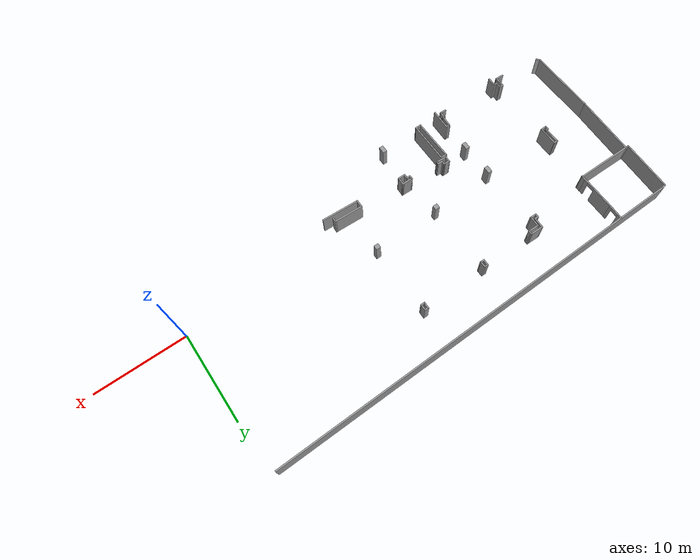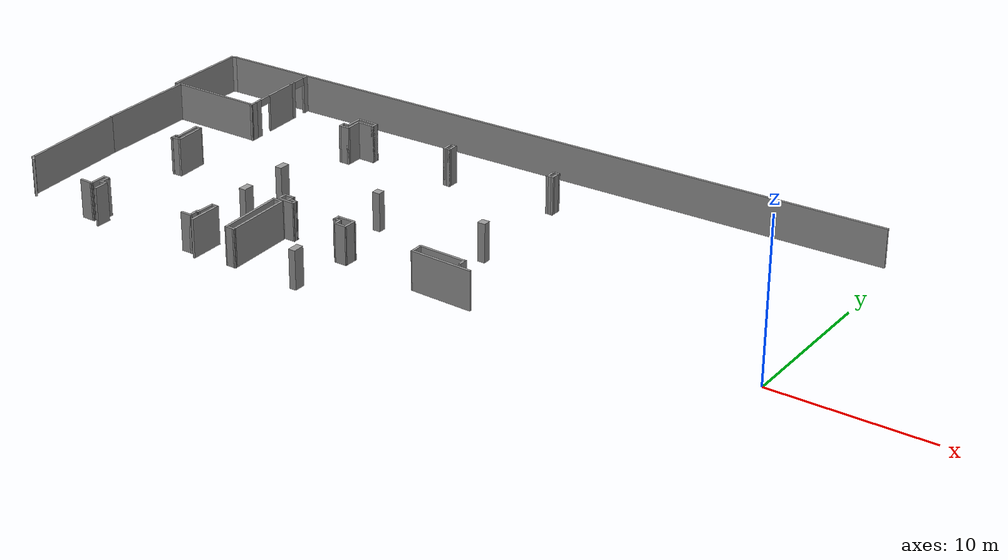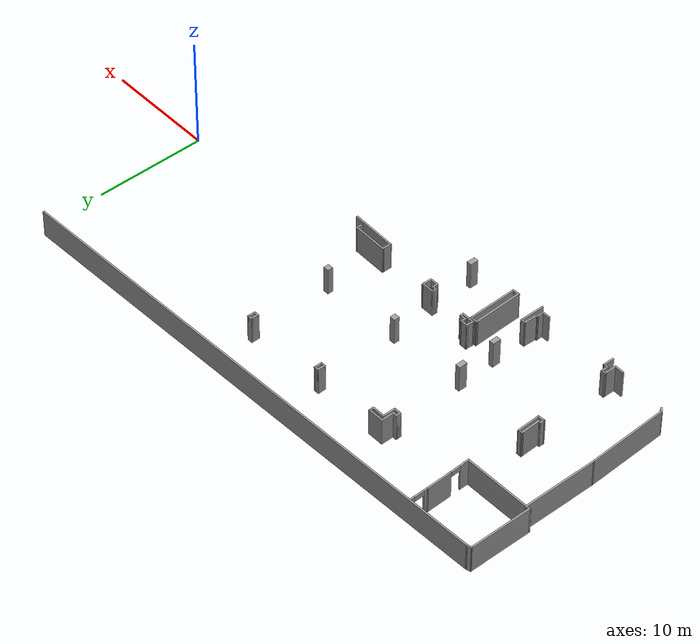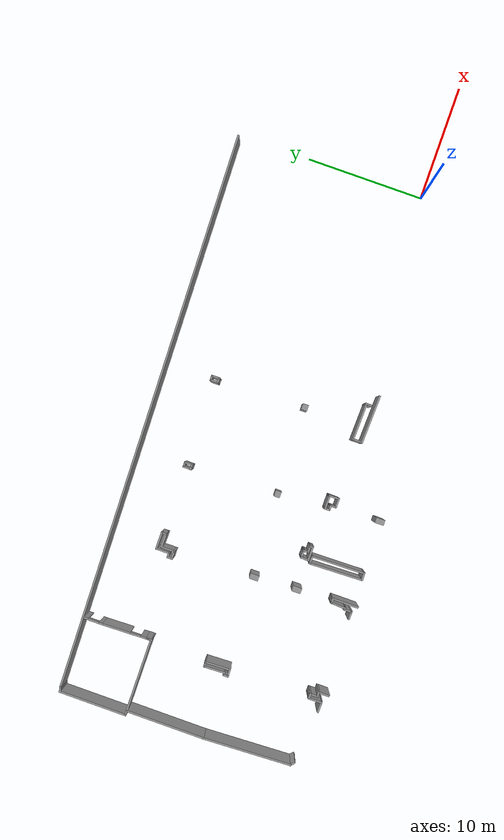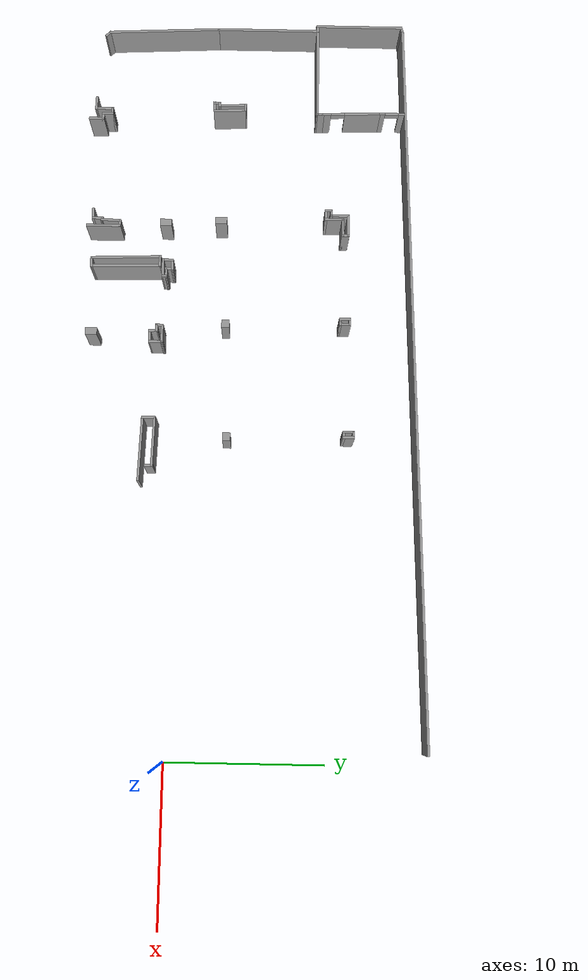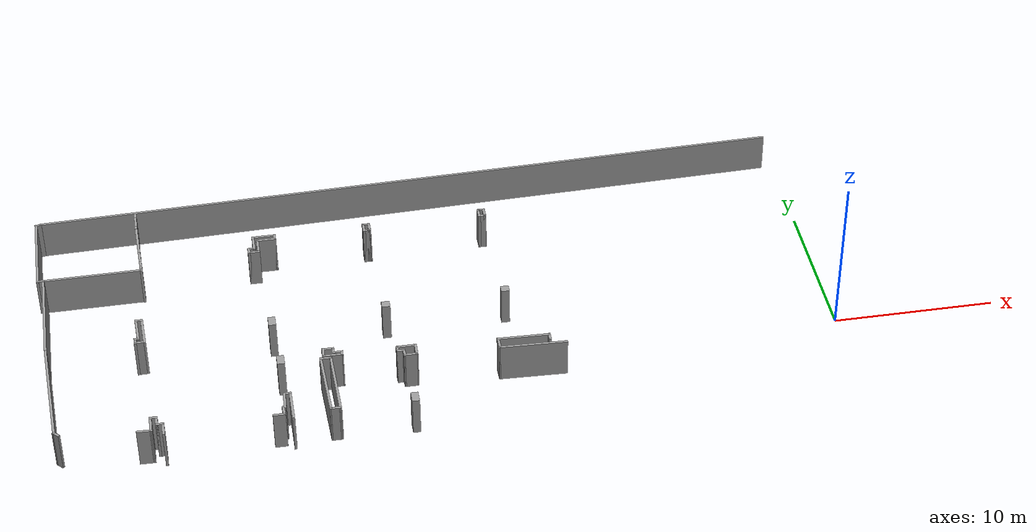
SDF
<sdf version="1.6">
 <model name="car_parking_underground_big_1">
  <pose>-9.36123 -7.37411 0 0 -0 0</pose>
  <link name="Wall_109">
   <collision name="Wall_109_Collision">
    <geometry><box><size>5.75 0.15 2.5</size></box></geometry>
    <pose>0 0 1.25 0 -0 0</pose>
   </collision>
   <visual name="Wall_109_Visual">
    <pose>0 0 1.25 0 -0 0</pose>
    <geometry><box><size>5.75 0.15 2.5</size></box></geometry>
    <material>
     <script><uri>file://media/materials/scripts/gazebo.material</uri><name>Gazebo/Grey</name></script>
     <ambient>1 1 1 1</ambient>
    </material>
    <meta><layer>0</layer></meta>
   </visual>
   <pose>-38.933 19.091 0 0 -0 -1.5708</pose>
  </link>
  <link name="Wall_110">
   <collision name="Wall_110_Collision">
    <geometry><box><size>0.491037 0.15 2.5</size></box></geometry>
    <pose>0 0 1.25 0 -0 0</pose>
   </collision>
   <visual name="Wall_110_Visual">
    <pose>0 0 1.25 0 -0 0</pose>
    <geometry><box><size>0.491037 0.15 2.5</size></box></geometry>
    <material>
     <script><uri>file://media/materials/scripts/gazebo.material</uri><name>Gazebo/Grey</name></script>
     <ambient>1 1 1 1</ambient>
    </material>
    <meta><layer>0</layer></meta>
   </visual>
   <pose>-38.7625 16.311 0 0 -0 1.1e-05</pose>
  </link>
  <link name="Wall_111">
   <collision name="Wall_111_Collision">
    <geometry><box><size>6.75 0.15 2.5</size></box></geometry>
    <pose>0 0 1.25 0 -0 0</pose>
   </collision>
   <visual name="Wall_111_Visual">
    <pose>0 0 1.25 0 -0 0</pose>
    <geometry><box><size>6.75 0.15 2.5</size></box></geometry>
    <material>
     <script><uri>file://media/materials/scripts/gazebo.material</uri><name>Gazebo/Grey</name></script>
     <ambient>1 1 1 1</ambient>
    </material>
    <meta><layer>0</layer></meta>
   </visual>
   <pose>-38.592 13.011 0 0 -0 -1.5708</pose>
  </link>
  <link name="Wall_112">
   <collision name="Wall_112_Collision">
    <geometry><box><size>7.4154 0.15 2.5</size></box></geometry>
    <pose>0 0 1.25 0 -0 0</pose>
   </collision>
   <visual name="Wall_112_Visual">
    <pose>0 0 1.25 0 -0 0</pose>
    <geometry><box><size>7.4154 0.15 2.5</size></box></geometry>
    <material>
     <script><uri>file://media/materials/scripts/gazebo.material</uri><name>Gazebo/Grey</name></script>
     <ambient>1 1 1 1</ambient>
    </material>
    <meta><layer>0</layer></meta>
   </visual>
   <pose>-38.4259 6.08207 0 0 -0 -1.52507</pose>
  </link>
  <link name="Wall_113">
   <collision name="Wall_113_Collision">
    <geometry><box><size>0.5 0.15 2.5</size></box></geometry>
    <pose>0 0 1.25 0 -0 0</pose>
   </collision>
   <visual name="Wall_113_Visual">
    <pose>0 0 1.25 0 -0 0</pose>
    <geometry><box><size>0.5 0.15 2.5</size></box></geometry>
    <material>
     <script><uri>file://media/materials/scripts/gazebo.material</uri><name>Gazebo/Grey</name></script>
     <ambient>1 1 1 1</ambient>
    </material>
    <meta><layer>0</layer></meta>
   </visual>
   <pose>-38.1362 2.32942 0 0 -0 -0.785398</pose>
  </link>
  <link name="Wall_425">
   <collision name="Wall_425_Collision">
    <geometry><box><size>0.5 0.15 2.5</size></box></geometry>
    <pose>0 0 1.25 0 -0 0</pose>
   </collision>
   <visual name="Wall_425_Visual">
    <pose>0 0 1.25 0 -0 0</pose>
    <geometry><box><size>0.5 0.15 2.5</size></box></geometry>
    <material>
     <script><uri>file://media/materials/scripts/gazebo.material</uri><name>Gazebo/Grey</name></script>
     <ambient>1 1 1 1</ambient>
    </material>
    <meta><layer>0</layer></meta>
   </visual>
   <pose>-11.0032 18.8573 0 0 -0 0</pose>
  </link>
  <link name="Wall_426">
   <collision name="Wall_426_Collision">
    <geometry><box><size>0.75 0.15 2.5</size></box></geometry>
    <pose>0 0 1.25 0 -0 0</pose>
   </collision>
   <visual name="Wall_426_Visual">
    <pose>0 0 1.25 0 -0 0</pose>
    <geometry><box><size>0.75 0.15 2.5</size></box></geometry>
    <material>
     <script><uri>file://media/materials/scripts/gazebo.material</uri><name>Gazebo/Grey</name></script>
     <ambient>1 1 1 1</ambient>
    </material>
    <meta><layer>0</layer></meta>
   </visual>
   <pose>-10.8282 18.5573 0 0 -0 -1.5708</pose>
  </link>
  <link name="Wall_427">
   <collision name="Wall_427_Collision">
    <geometry><box><size>0.5 0.15 2.5</size></box></geometry>
    <pose>0 0 1.25 0 -0 0</pose>
   </collision>
   <visual name="Wall_427_Visual">
    <pose>0 0 1.25 0 -0 0</pose>
    <geometry><box><size>0.5 0.15 2.5</size></box></geometry>
    <material>
     <script><uri>file://media/materials/scripts/gazebo.material</uri><name>Gazebo/Grey</name></script>
     <ambient>1 1 1 1</ambient>
    </material>
    <meta><layer>0</layer></meta>
   </visual>
   <pose>-11.0032 18.2573 0 0 -0 3.14159</pose>
  </link>
  <link name="Wall_428">
   <collision name="Wall_428_Collision">
    <geometry><box><size>0.75 0.15 2.5</size></box></geometry>
    <pose>0 0 1.25 0 -0 0</pose>
   </collision>
   <visual name="Wall_428_Visual">
    <pose>0 0 1.25 0 -0 0</pose>
    <geometry><box><size>0.75 0.15 2.5</size></box></geometry>
    <material>
     <script><uri>file://media/materials/scripts/gazebo.material</uri><name>Gazebo/Grey</name></script>
     <ambient>1 1 1 1</ambient>
    </material>
    <meta><layer>0</layer></meta>
   </visual>
   <pose>-11.1782 18.5573 0 0 -0 1.5708</pose>
  </link>
  <link name="Wall_430">
   <collision name="Wall_430_Collision">
    <geometry><box><size>0.5 0.15 2.5</size></box></geometry>
    <pose>0 0 1.25 0 -0 0</pose>
   </collision>
   <visual name="Wall_430_Visual">
    <pose>0 0 1.25 0 -0 0</pose>
    <geometry><box><size>0.5 0.15 2.5</size></box></geometry>
    <material>
     <script><uri>file://media/materials/scripts/gazebo.material</uri><name>Gazebo/Grey</name></script>
     <ambient>1 1 1 1</ambient>
    </material>
    <meta><layer>0</layer></meta>
   </visual>
   <pose>-18.3832 18.5773 0 0 -0 0</pose>
  </link>
  <link name="Wall_431">
   <collision name="Wall_431_Collision">
    <geometry><box><size>0.75 0.15 2.5</size></box></geometry>
    <pose>0 0 1.25 0 -0 0</pose>
   </collision>
   <visual name="Wall_431_Visual">
    <pose>0 0 1.25 0 -0 0</pose>
    <geometry><box><size>0.75 0.15 2.5</size></box></geometry>
    <material>
     <script><uri>file://media/materials/scripts/gazebo.material</uri><name>Gazebo/Grey</name></script>
     <ambient>1 1 1 1</ambient>
    </material>
    <meta><layer>0</layer></meta>
   </visual>
   <pose>-18.2082 18.2773 0 0 -0 -1.5708</pose>
  </link>
  <link name="Wall_432">
   <collision name="Wall_432_Collision">
    <geometry><box><size>0.25 0.15 2.5</size></box></geometry>
    <pose>0 0 1.25 0 -0 0</pose>
   </collision>
   <visual name="Wall_432_Visual">
    <pose>0 0 1.25 0 -0 0</pose>
    <geometry><box><size>0.25 0.15 2.5</size></box></geometry>
    <material>
     <script><uri>file://media/materials/scripts/gazebo.material</uri><name>Gazebo/Grey</name></script>
     <ambient>1 1 1 1</ambient>
    </material>
    <meta><layer>0</layer></meta>
   </visual>
   <pose>-18.2582 17.9773 0 0 -0 3.14159</pose>
  </link>
  <link name="Wall_433">
   <collision name="Wall_433_Collision">
    <geometry><box><size>0.4 0.15 2.5</size></box></geometry>
    <pose>0 0 1.25 0 -0 0</pose>
   </collision>
   <visual name="Wall_433_Visual">
    <pose>0 0 1.25 0 -0 0</pose>
    <geometry><box><size>0.4 0.15 2.5</size></box></geometry>
    <material>
     <script><uri>file://media/materials/scripts/gazebo.material</uri><name>Gazebo/Grey</name></script>
     <ambient>1 1 1 1</ambient>
    </material>
    <meta><layer>0</layer></meta>
   </visual>
   <pose>-18.4332 17.9773 0 0 -0 3.14159</pose>
  </link>
  <link name="Wall_434">
   <collision name="Wall_434_Collision">
    <geometry><box><size>0.75 0.15 2.5</size></box></geometry>
    <pose>0 0 1.25 0 -0 0</pose>
   </collision>
   <visual name="Wall_434_Visual">
    <pose>0 0 1.25 0 -0 0</pose>
    <geometry><box><size>0.75 0.15 2.5</size></box></geometry>
    <material>
     <script><uri>file://media/materials/scripts/gazebo.material</uri><name>Gazebo/Grey</name></script>
     <ambient>1 1 1 1</ambient>
    </material>
    <meta><layer>0</layer></meta>
   </visual>
   <pose>-18.5582 18.2773 0 0 -0 1.5708</pose>
  </link>
  <link name="Wall_436">
   <collision name="Wall_436_Collision">
    <geometry><box><size>1.5 0.15 2.5</size></box></geometry>
    <pose>0 0 1.25 0 -0 0</pose>
   </collision>
   <visual name="Wall_436_Visual">
    <pose>0 0 1.25 0 -0 0</pose>
    <geometry><box><size>1.5 0.15 2.5</size></box></geometry>
    <material>
     <script><uri>file://media/materials/scripts/gazebo.material</uri><name>Gazebo/Grey</name></script>
     <ambient>1 1 1 1</ambient>
    </material>
    <meta><layer>0</layer></meta>
   </visual>
   <pose>-24.8632 18.4373 0 0 -0 0</pose>
  </link>
  <link name="Wall_437">
   <collision name="Wall_437_Collision">
    <geometry><box><size>0.5 0.15 2.5</size></box></geometry>
    <pose>0 0 1.25 0 -0 0</pose>
   </collision>
   <visual name="Wall_437_Visual">
    <pose>0 0 1.25 0 -0 0</pose>
    <geometry><box><size>0.5 0.15 2.5</size></box></geometry>
    <material>
     <script><uri>file://media/materials/scripts/gazebo.material</uri><name>Gazebo/Grey</name></script>
     <ambient>1 1 1 1</ambient>
    </material>
    <meta><layer>0</layer></meta>
   </visual>
   <pose>-24.1882 18.2623 0 0 -0 -1.5708</pose>
  </link>
  <link name="Wall_438">
   <collision name="Wall_438_Collision">
    <geometry><box><size>1.25 0.15 2.5</size></box></geometry>
    <pose>0 0 1.25 0 -0 0</pose>
   </collision>
   <visual name="Wall_438_Visual">
    <pose>0 0 1.25 0 -0 0</pose>
    <geometry><box><size>1.25 0.15 2.5</size></box></geometry>
    <material>
     <script><uri>file://media/materials/scripts/gazebo.material</uri><name>Gazebo/Grey</name></script>
     <ambient>1 1 1 1</ambient>
    </material>
    <meta><layer>0</layer></meta>
   </visual>
   <pose>-24.7382 18.0873 0 0 -0 3.14159</pose>
  </link>
  <link name="Wall_439">
   <collision name="Wall_439_Collision">
    <geometry><box><size>1.25 0.15 2.5</size></box></geometry>
    <pose>0 0 1.25 0 -0 0</pose>
   </collision>
   <visual name="Wall_439_Visual">
    <pose>0 0 1.25 0 -0 0</pose>
    <geometry><box><size>1.25 0.15 2.5</size></box></geometry>
    <material>
     <script><uri>file://media/materials/scripts/gazebo.material</uri><name>Gazebo/Grey</name></script>
     <ambient>1 1 1 1</ambient>
    </material>
    <meta><layer>0</layer></meta>
   </visual>
   <pose>-25.2882 17.5373 0 0 -0 -1.5708</pose>
  </link>
  <link name="Wall_440">
   <collision name="Wall_440_Collision">
    <geometry><box><size>0.75 0.15 2.5</size></box></geometry>
    <pose>0 0 1.25 0 -0 0</pose>
   </collision>
   <visual name="Wall_440_Visual">
    <pose>0 0 1.25 0 -0 0</pose>
    <geometry><box><size>0.75 0.15 2.5</size></box></geometry>
    <material>
     <script><uri>file://media/materials/scripts/gazebo.material</uri><name>Gazebo/Grey</name></script>
     <ambient>1 1 1 1</ambient>
    </material>
    <meta><layer>0</layer></meta>
   </visual>
   <pose>-25.5882 16.9873 0 0 -0 3.14159</pose>
  </link>
  <link name="Wall_441">
   <collision name="Wall_441_Collision">
    <geometry><box><size>0.5 0.15 2.5</size></box></geometry>
    <pose>0 0 1.25 0 -0 0</pose>
   </collision>
   <visual name="Wall_441_Visual">
    <pose>0 0 1.25 0 -0 0</pose>
    <geometry><box><size>0.5 0.15 2.5</size></box></geometry>
    <material>
     <script><uri>file://media/materials/scripts/gazebo.material</uri><name>Gazebo/Grey</name></script>
     <ambient>1 1 1 1</ambient>
    </material>
    <meta><layer>0</layer></meta>
   </visual>
   <pose>-25.8882 17.1623 0 0 -0 1.5708</pose>
  </link>
  <link name="Wall_442">
   <collision name="Wall_442_Collision">
    <geometry><box><size>0.5 0.15 2.5</size></box></geometry>
    <pose>0 0 1.25 0 -0 0</pose>
   </collision>
   <visual name="Wall_442_Visual">
    <pose>0 0 1.25 0 -0 0</pose>
    <geometry><box><size>0.5 0.15 2.5</size></box></geometry>
    <material>
     <script><uri>file://media/materials/scripts/gazebo.material</uri><name>Gazebo/Grey</name></script>
     <ambient>1 1 1 1</ambient>
    </material>
    <meta><layer>0</layer></meta>
   </visual>
   <pose>-25.7132 17.3373 0 0 -0 0</pose>
  </link>
  <link name="Wall_443">
   <collision name="Wall_443_Collision">
    <geometry><box><size>1.25 0.15 2.5</size></box></geometry>
    <pose>0 0 1.25 0 -0 0</pose>
   </collision>
   <visual name="Wall_443_Visual">
    <pose>0 0 1.25 0 -0 0</pose>
    <geometry><box><size>1.25 0.15 2.5</size></box></geometry>
    <material>
     <script><uri>file://media/materials/scripts/gazebo.material</uri><name>Gazebo/Grey</name></script>
     <ambient>1 1 1 1</ambient>
    </material>
    <meta><layer>0</layer></meta>
   </visual>
   <pose>-25.5382 17.8873 0 0 -0 1.5708</pose>
  </link>
  <link name="Wall_445">
   <pose>-32.7182 21.2973 0 0 -0 -1.5708</pose>
   <visual name="Wall_445_Visual_0">
    <pose>-0.642378 0 1.25 0 -0 0</pose>
    <geometry><box><size>0.465243 0.15 2.5</size></box></geometry>
    <material>
     <script><uri>file://media/materials/scripts/gazebo.material</uri><name>Gazebo/Grey</name></script>
     <ambient>1 1 1 1</ambient>
    </material>
    <meta><layer>0</layer></meta>
   </visual>
   <collision name="Wall_445_Collision_0">
    <geometry><box><size>0.465243 0.15 2.5</size></box></geometry>
    <pose>-0.642378 0 1.25 0 -0 0</pose>
   </collision>
   <visual name="Wall_445_Visual_1">
    <pose>0.682622 0 1.25 0 -0 0</pose>
    <geometry><box><size>0.384757 0.15 2.5</size></box></geometry>
    <material>
     <script><uri>file://media/materials/scripts/gazebo.material</uri><name>Gazebo/Grey</name></script>
     <ambient>1 1 1 1</ambient>
    </material>
    <meta><layer>0</layer></meta>
   </visual>
   <collision name="Wall_445_Collision_1">
    <geometry><box><size>0.384757 0.15 2.5</size></box></geometry>
    <pose>0.682622 0 1.25 0 -0 0</pose>
   </collision>
   <visual name="Wall_445_Visual_2">
    <pose>0.040243 0 2.25 0 -0 0</pose>
    <geometry><box><size>0.9 0.15 0.5</size></box></geometry>
    <material>
     <script><uri>file://media/materials/scripts/gazebo.material</uri><name>Gazebo/Grey</name></script>
     <ambient>1 1 1 1</ambient>
    </material>
    <meta><layer>0</layer></meta>
   </visual>
   <collision name="Wall_445_Collision_2">
    <geometry><box><size>0.9 0.15 0.5</size></box></geometry>
    <pose>0.040243 0 2.25 0 -0 0</pose>
   </collision>
  </link>
  <link name="Wall_447">
   <collision name="Wall_447_Collision">
    <geometry><box><size>0.5 0.15 2.5</size></box></geometry>
    <pose>0 0 1.25 0 -0 0</pose>
   </collision>
   <visual name="Wall_447_Visual">
    <pose>0 0 1.25 0 -0 0</pose>
    <geometry><box><size>0.5 0.15 2.5</size></box></geometry>
    <material>
     <script><uri>file://media/materials/scripts/gazebo.material</uri><name>Gazebo/Grey</name></script>
     <ambient>1 1 1 1</ambient>
    </material>
    <meta><layer>0</layer></meta>
   </visual>
   <pose>-32.5982 16.5423 0 0 -0 -1.5708</pose>
  </link>
  <link name="Wall_448">
   <collision name="Wall_448_Collision">
    <geometry><box><size>6.144 0.15 2.5</size></box></geometry>
    <pose>0 0 1.25 0 -0 0</pose>
   </collision>
   <visual name="Wall_448_Visual">
    <pose>0 0 1.25 0 -0 0</pose>
    <geometry><box><size>6.144 0.15 2.5</size></box></geometry>
    <material>
     <script><uri>file://media/materials/scripts/gazebo.material</uri><name>Gazebo/Grey</name></script>
     <ambient>1 1 1 1</ambient>
    </material>
    <meta><layer>0</layer></meta>
   </visual>
   <pose>-35.5951 16.3391 0 0 -0 -3.1322</pose>
  </link>
  <link name="Wall_5">
   <collision name="Wall_5_Collision">
    <geometry><box><size>47.3001 0.15 2.5</size></box></geometry>
    <pose>0 0 1.25 0 -0 0</pose>
   </collision>
   <visual name="Wall_5_Visual">
    <pose>0 0 1.25 0 -0 0</pose>
    <geometry><box><size>47.3001 0.15 2.5</size></box></geometry>
    <material>
     <script><uri>file://media/materials/scripts/gazebo.material</uri><name>Gazebo/Grey</name></script>
     <ambient>1 1 1 1</ambient>
    </material>
    <meta><layer>0</layer></meta>
   </visual>
   <pose>-15.0314 22.7184 0 0 -0 0.031262</pose>
  </link>
  <link name="Wall_539">
   <collision name="Wall_539_Collision">
    <geometry><box><size>0.894464 0.15 2.5</size></box></geometry>
    <pose>0 0 1.25 0 -0 0</pose>
   </collision>
   <visual name="Wall_539_Visual">
    <pose>0 0 1.25 0 -0 0</pose>
    <geometry><box><size>0.894464 0.15 2.5</size></box></geometry>
    <material>
     <script><uri>file://media/materials/scripts/gazebo.material</uri><name>Gazebo/Grey</name></script>
     <ambient>1 1 1 1</ambient>
    </material>
    <meta><layer>0</layer></meta>
   </visual>
   <pose>-11.8851 5.92409 0 0 -0 -1.5708</pose>
  </link>
  <link name="Wall_540">
   <collision name="Wall_540_Collision">
    <geometry><box><size>4.1432 0.15 2.5</size></box></geometry>
    <pose>0 0 1.25 0 -0 0</pose>
   </collision>
   <visual name="Wall_540_Visual">
    <pose>0 0 1.25 0 -0 0</pose>
    <geometry><box><size>4.1432 0.15 2.5</size></box></geometry>
    <material>
     <script><uri>file://media/materials/scripts/gazebo.material</uri><name>Gazebo/Grey</name></script>
     <ambient>1 1 1 1</ambient>
    </material>
    <meta><layer>0</layer></meta>
   </visual>
   <pose>-9.88972 5.4815 0 0 -0 -0.035246</pose>
  </link>
  <link name="Wall_543">
   <collision name="Wall_543_Collision">
    <geometry><box><size>0.556499 0.15 2.5</size></box></geometry>
    <pose>0 0 1.25 0 -0 0</pose>
   </collision>
   <visual name="Wall_543_Visual">
    <pose>0 0 1.25 0 -0 0</pose>
    <geometry><box><size>0.556499 0.15 2.5</size></box></geometry>
    <material>
     <script><uri>file://media/materials/scripts/gazebo.material</uri><name>Gazebo/Grey</name></script>
     <ambient>1 1 1 1</ambient>
    </material>
    <meta><layer>0</layer></meta>
   </visual>
   <pose>-8.80738 6.04036 0 0 -0 1.54764</pose>
  </link>
  <link name="Wall_544">
   <collision name="Wall_544_Collision">
    <geometry><box><size>3.21608 0.15 2.5</size></box></geometry>
    <pose>0 0 1.25 0 -0 0</pose>
   </collision>
   <visual name="Wall_544_Visual">
    <pose>0 0 1.25 0 -0 0</pose>
    <geometry><box><size>3.21608 0.15 2.5</size></box></geometry>
    <material>
     <script><uri>file://media/materials/scripts/gazebo.material</uri><name>Gazebo/Grey</name></script>
     <ambient>1 1 1 1</ambient>
    </material>
    <meta><layer>0</layer></meta>
   </visual>
   <pose>-10.3527 6.26994 0 0 -0 3.11291</pose>
  </link>
  <link name="Wall_548">
   <collision name="Wall_548_Collision">
    <geometry><box><size>1.25 0.15 2.5</size></box></geometry>
    <pose>0 0 1.25 0 -0 0</pose>
   </collision>
   <visual name="Wall_548_Visual">
    <pose>0 0 1.25 0 -0 0</pose>
    <geometry><box><size>1.25 0.15 2.5</size></box></geometry>
    <material>
     <script><uri>file://media/materials/scripts/gazebo.material</uri><name>Gazebo/Grey</name></script>
     <ambient>1 1 1 1</ambient>
    </material>
    <meta><layer>0</layer></meta>
   </visual>
   <pose>-17.3848 6.59436 0 0 -0 0</pose>
  </link>
  <link name="Wall_549">
   <collision name="Wall_549_Collision">
    <geometry><box><size>0.928661 0.15 2.5</size></box></geometry>
    <pose>0 0 1.25 0 -0 0</pose>
   </collision>
   <visual name="Wall_549_Visual">
    <pose>0 0 1.25 0 -0 0</pose>
    <geometry><box><size>0.928661 0.15 2.5</size></box></geometry>
    <material>
     <script><uri>file://media/materials/scripts/gazebo.material</uri><name>Gazebo/Grey</name></script>
     <ambient>1 1 1 1</ambient>
    </material>
    <meta><layer>0</layer></meta>
   </visual>
   <pose>-16.8441 6.20503 0 0 -0 -1.59464</pose>
  </link>
  <link name="Wall_550">
   <collision name="Wall_550_Collision">
    <geometry><box><size>0.85 0.15 2.5</size></box></geometry>
    <pose>0 0 1.25 0 -0 0</pose>
   </collision>
   <visual name="Wall_550_Visual">
    <pose>0 0 1.25 0 -0 0</pose>
    <geometry><box><size>0.85 0.15 2.5</size></box></geometry>
    <material>
     <script><uri>file://media/materials/scripts/gazebo.material</uri><name>Gazebo/Grey</name></script>
     <ambient>1 1 1 1</ambient>
    </material>
    <meta><layer>0</layer></meta>
   </visual>
   <pose>-17.2034 5.8157 0 0 -0 3.14159</pose>
  </link>
  <link name="Wall_551">
   <collision name="Wall_551_Collision">
    <geometry><box><size>0.579811 0.15 2.5</size></box></geometry>
    <pose>0 0 1.25 0 -0 0</pose>
   </collision>
   <visual name="Wall_551_Visual">
    <pose>0 0 1.25 0 -0 0</pose>
    <geometry><box><size>0.579811 0.15 2.5</size></box></geometry>
    <material>
     <script><uri>file://media/materials/scripts/gazebo.material</uri><name>Gazebo/Grey</name></script>
     <ambient>1 1 1 1</ambient>
    </material>
    <meta><layer>0</layer></meta>
   </visual>
   <pose>-17.5691 6.03003 0 0 -0 1.64398</pose>
  </link>
  <link name="Wall_552">
   <collision name="Wall_552_Collision">
    <geometry><box><size>0.5 0.15 2.5</size></box></geometry>
    <pose>0 0 1.25 0 -0 0</pose>
   </collision>
   <visual name="Wall_552_Visual">
    <pose>0 0 1.25 0 -0 0</pose>
    <geometry><box><size>0.5 0.15 2.5</size></box></geometry>
    <material>
     <script><uri>file://media/materials/scripts/gazebo.material</uri><name>Gazebo/Grey</name></script>
     <ambient>1 1 1 1</ambient>
    </material>
    <meta><layer>0</layer></meta>
   </visual>
   <pose>-17.7598 6.24436 0 0 -0 3.14159</pose>
  </link>
  <link name="Wall_553">
   <collision name="Wall_553_Collision">
    <geometry><box><size>0.5 0.15 2.5</size></box></geometry>
    <pose>0 0 1.25 0 -0 0</pose>
   </collision>
   <visual name="Wall_553_Visual">
    <pose>0 0 1.25 0 -0 0</pose>
    <geometry><box><size>0.5 0.15 2.5</size></box></geometry>
    <material>
     <script><uri>file://media/materials/scripts/gazebo.material</uri><name>Gazebo/Grey</name></script>
     <ambient>1 1 1 1</ambient>
    </material>
    <meta><layer>0</layer></meta>
   </visual>
   <pose>-17.9348 6.41936 0 0 -0 1.5708</pose>
  </link>
  <link name="Wall_555">
   <collision name="Wall_555_Collision">
    <geometry><box><size>0.75 0.15 2.5</size></box></geometry>
    <pose>0 0 1.25 0 -0 0</pose>
   </collision>
   <visual name="Wall_555_Visual">
    <pose>0 0 1.25 0 -0 0</pose>
    <geometry><box><size>0.75 0.15 2.5</size></box></geometry>
    <material>
     <script><uri>file://media/materials/scripts/gazebo.material</uri><name>Gazebo/Grey</name></script>
     <ambient>1 1 1 1</ambient>
    </material>
    <meta><layer>0</layer></meta>
   </visual>
   <pose>-22.0211 7.11097 0 0 -0 0</pose>
  </link>
  <link name="Wall_556">
   <collision name="Wall_556_Collision">
    <geometry><box><size>0.558389 0.15 2.5</size></box></geometry>
    <pose>0 0 1.25 0 -0 0</pose>
   </collision>
   <visual name="Wall_556_Visual">
    <pose>0 0 1.25 0 -0 0</pose>
    <geometry><box><size>0.558389 0.15 2.5</size></box></geometry>
    <material>
     <script><uri>file://media/materials/scripts/gazebo.material</uri><name>Gazebo/Grey</name></script>
     <ambient>1 1 1 1</ambient>
    </material>
    <meta><layer>0</layer></meta>
   </visual>
   <pose>-21.7253 6.90681 0 0 -0 -1.59113</pose>
  </link>
  <link name="Wall_557">
   <collision name="Wall_557_Collision">
    <geometry><box><size>0.65 0.15 2.5</size></box></geometry>
    <pose>0 0 1.25 0 -0 0</pose>
   </collision>
   <visual name="Wall_557_Visual">
    <pose>0 0 1.25 0 -0 0</pose>
    <geometry><box><size>0.65 0.15 2.5</size></box></geometry>
    <material>
     <script><uri>file://media/materials/scripts/gazebo.material</uri><name>Gazebo/Grey</name></script>
     <ambient>1 1 1 1</ambient>
    </material>
    <meta><layer>0</layer></meta>
   </visual>
   <pose>-21.4794 6.73784 0 0 -0 0</pose>
  </link>
  <link name="Wall_558">
   <collision name="Wall_558_Collision">
    <geometry><box><size>0.34192 0.15 2.5</size></box></geometry>
    <pose>0 0 1.25 0 -0 0</pose>
   </collision>
   <visual name="Wall_558_Visual">
    <pose>0 0 1.25 0 -0 0</pose>
    <geometry><box><size>0.34192 0.15 2.5</size></box></geometry>
    <material>
     <script><uri>file://media/materials/scripts/gazebo.material</uri><name>Gazebo/Grey</name></script>
     <ambient>1 1 1 1</ambient>
    </material>
    <meta><layer>0</layer></meta>
   </visual>
   <pose>-21.2341 6.60682 0 0 -0 -1.61919</pose>
  </link>
  <link name="Wall_559">
   <collision name="Wall_559_Collision">
    <geometry><box><size>1.25 0.15 2.5</size></box></geometry>
    <pose>0 0 1.25 0 -0 0</pose>
   </collision>
   <visual name="Wall_559_Visual">
    <pose>0 0 1.25 0 -0 0</pose>
    <geometry><box><size>1.25 0.15 2.5</size></box></geometry>
    <material>
     <script><uri>file://media/materials/scripts/gazebo.material</uri><name>Gazebo/Grey</name></script>
     <ambient>1 1 1 1</ambient>
    </material>
    <meta><layer>0</layer></meta>
   </visual>
   <pose>-21.7887 6.51097 0 0 -0 3.14159</pose>
  </link>
  <link name="Wall_560">
   <collision name="Wall_560_Collision">
    <geometry><box><size>0.75103 0.15 2.5</size></box></geometry>
    <pose>0 0 1.25 0 -0 0</pose>
   </collision>
   <visual name="Wall_560_Visual">
    <pose>0 0 1.25 0 -0 0</pose>
    <geometry><box><size>0.75103 0.15 2.5</size></box></geometry>
    <material>
     <script><uri>file://media/materials/scripts/gazebo.material</uri><name>Gazebo/Grey</name></script>
     <ambient>1 1 1 1</ambient>
    </material>
    <meta><layer>0</layer></meta>
   </visual>
   <pose>-22.3211 6.81097 0 0 -0 1.51223</pose>
  </link>
  <link name="Wall_562">
   <collision name="Wall_562_Collision">
    <geometry><box><size>0.75 0.45 2.5</size></box></geometry>
    <pose>0 0 1.25 0 -0 0</pose>
   </collision>
   <visual name="Wall_562_Visual">
    <pose>0 0 1.25 0 -0 0</pose>
    <geometry><box><size>0.75 0.45 2.5</size></box></geometry>
    <material>
     <script><uri>file://media/materials/scripts/gazebo.material</uri><name>Gazebo/Grey</name></script>
     <ambient>1 1 1 1</ambient>
    </material>
    <meta><layer>0</layer></meta>
   </visual>
   <pose>-24.8834 6.60345 0 0 -0 -1.5708</pose>
  </link>
  <link name="Wall_564">
   <collision name="Wall_564_Collision">
    <geometry><box><size>0.75 0.45 2.5</size></box></geometry>
    <pose>0 0 1.25 0 -0 0</pose>
   </collision>
   <visual name="Wall_564_Visual">
    <pose>0 0 1.25 0 -0 0</pose>
    <geometry><box><size>0.75 0.45 2.5</size></box></geometry>
    <material>
     <script><uri>file://media/materials/scripts/gazebo.material</uri><name>Gazebo/Grey</name></script>
     <ambient>1 1 1 1</ambient>
    </material>
    <meta><layer>0</layer></meta>
   </visual>
   <pose>-25.0769 10.1919 0 0 -0 -1.5708</pose>
  </link>
  <link name="Wall_566">
   <collision name="Wall_566_Collision">
    <geometry><box><size>0.51 0.5 2.5</size></box></geometry>
    <pose>0 0 1.25 0 -0 0</pose>
   </collision>
   <visual name="Wall_566_Visual">
    <pose>0 0 1.25 0 -0 0</pose>
    <geometry><box><size>0.51 0.5 2.5</size></box></geometry>
    <material>
     <script><uri>file://media/materials/scripts/gazebo.material</uri><name>Gazebo/Grey</name></script>
     <ambient>1 1 1 1</ambient>
    </material>
    <meta><layer>0</layer></meta>
   </visual>
   <pose>-18.1167 10.6233 0 0 -0 3.14159</pose>
  </link>
  <link name="Wall_568">
   <collision name="Wall_568_Collision">
    <geometry><box><size>0.51 0.5 2.5</size></box></geometry>
    <pose>0 0 1.25 0 -0 0</pose>
   </collision>
   <visual name="Wall_568_Visual">
    <pose>0 0 1.25 0 -0 0</pose>
    <geometry><box><size>0.51 0.5 2.5</size></box></geometry>
    <material>
     <script><uri>file://media/materials/scripts/gazebo.material</uri><name>Gazebo/Grey</name></script>
     <ambient>1 1 1 1</ambient>
    </material>
    <meta><layer>0</layer></meta>
   </visual>
   <pose>-10.7367 10.8691 0 0 -0 0</pose>
  </link>
  <link name="Wall_602">
   <collision name="Wall_602_Collision">
    <geometry><box><size>0.75 0.45 2.5</size></box></geometry>
    <pose>0 0 1.25 0 -0 0</pose>
   </collision>
   <visual name="Wall_602_Visual">
    <pose>0 0 1.25 0 -0 0</pose>
    <geometry><box><size>0.75 0.45 2.5</size></box></geometry>
    <material>
     <script><uri>file://media/materials/scripts/gazebo.material</uri><name>Gazebo/Grey</name></script>
     <ambient>1 1 1 1</ambient>
    </material>
    <meta><layer>0</layer></meta>
   </visual>
   <pose>-17.4543 2.06234 0 0 -0 -1.5708</pose>
  </link>
  <link name="Wall_610">
   <collision name="Wall_610_Collision">
    <geometry><box><size>0.75 0.15 2.5</size></box></geometry>
    <pose>0 0 1.25 0 -0 0</pose>
   </collision>
   <visual name="Wall_610_Visual">
    <pose>0 0 1.25 0 -0 0</pose>
    <geometry><box><size>0.75 0.15 2.5</size></box></geometry>
    <material>
     <script><uri>file://media/materials/scripts/gazebo.material</uri><name>Gazebo/Grey</name></script>
     <ambient>1 1 1 1</ambient>
    </material>
    <meta><layer>0</layer></meta>
   </visual>
   <pose>-22.23 6.30529 0 0 -0 0</pose>
  </link>
  <link name="Wall_611">
   <collision name="Wall_611_Collision">
    <geometry><box><size>4.57 0.15 2.5</size></box></geometry>
    <pose>0 0 1.25 0 -0 0</pose>
   </collision>
   <visual name="Wall_611_Visual">
    <pose>0 0 1.25 0 -0 0</pose>
    <geometry><box><size>4.57 0.15 2.5</size></box></geometry>
    <material>
     <script><uri>file://media/materials/scripts/gazebo.material</uri><name>Gazebo/Grey</name></script>
     <ambient>1 1 1 1</ambient>
    </material>
    <meta><layer>0</layer></meta>
   </visual>
   <pose>-21.8843 4.09576 0 0 -0 -1.5501</pose>
  </link>
  <link name="Wall_612">
   <collision name="Wall_612_Collision">
    <geometry><box><size>0.7 0.15 2.5</size></box></geometry>
    <pose>0 0 1.25 0 -0 0</pose>
   </collision>
   <visual name="Wall_612_Visual">
    <pose>0 0 1.25 0 -0 0</pose>
    <geometry><box><size>0.7 0.15 2.5</size></box></geometry>
    <material>
     <script><uri>file://media/materials/scripts/gazebo.material</uri><name>Gazebo/Grey</name></script>
     <ambient>1 1 1 1</ambient>
    </material>
    <meta><layer>0</layer></meta>
   </visual>
   <pose>-22.1135 1.88623 0 0 -0 3.14159</pose>
  </link>
  <link name="Wall_613">
   <collision name="Wall_613_Collision">
    <geometry><box><size>4.57132 0.15 2.5</size></box></geometry>
    <pose>0 0 1.25 0 -0 0</pose>
   </collision>
   <visual name="Wall_613_Visual">
    <pose>0 0 1.25 0 -0 0</pose>
    <geometry><box><size>4.57132 0.15 2.5</size></box></geometry>
    <material>
     <script><uri>file://media/materials/scripts/gazebo.material</uri><name>Gazebo/Grey</name></script>
     <ambient>1 1 1 1</ambient>
    </material>
    <meta><layer>0</layer></meta>
   </visual>
   <pose>-22.4593 4.09576 0 0 -0 1.6028</pose>
  </link>
  <link name="Wall_615">
   <collision name="Wall_615_Collision">
    <geometry><box><size>0.5 0.15 2.5</size></box></geometry>
    <pose>0 0 1.25 0 -0 0</pose>
   </collision>
   <visual name="Wall_615_Visual">
    <pose>0 0 1.25 0 -0 0</pose>
    <geometry><box><size>0.5 0.15 2.5</size></box></geometry>
    <material>
     <script><uri>file://media/materials/scripts/gazebo.material</uri><name>Gazebo/Grey</name></script>
     <ambient>1 1 1 1</ambient>
    </material>
    <meta><layer>0</layer></meta>
   </visual>
   <pose>-24.7696 3.60341 0 0 -0 0</pose>
  </link>
  <link name="Wall_616">
   <collision name="Wall_616_Collision">
    <geometry><box><size>2.25 0.15 2.5</size></box></geometry>
    <pose>0 0 1.25 0 -0 0</pose>
   </collision>
   <visual name="Wall_616_Visual">
    <pose>0 0 1.25 0 -0 0</pose>
    <geometry><box><size>2.25 0.15 2.5</size></box></geometry>
    <material>
     <script><uri>file://media/materials/scripts/gazebo.material</uri><name>Gazebo/Grey</name></script>
     <ambient>1 1 1 1</ambient>
    </material>
    <meta><layer>0</layer></meta>
   </visual>
   <pose>-24.5946 2.55341 0 0 -0 -1.5708</pose>
  </link>
  <link name="Wall_619">
   <collision name="Wall_619_Collision">
    <geometry><box><size>0.75 0.15 2.5</size></box></geometry>
    <pose>0 0 1.25 0 -0 0</pose>
   </collision>
   <visual name="Wall_619_Visual">
    <pose>0 0 1.25 0 -0 0</pose>
    <geometry><box><size>0.75 0.15 2.5</size></box></geometry>
    <material>
     <script><uri>file://media/materials/scripts/gazebo.material</uri><name>Gazebo/Grey</name></script>
     <ambient>1 1 1 1</ambient>
    </material>
    <meta><layer>0</layer></meta>
   </visual>
   <pose>-25.3946 1.85341 0 0 -0 0</pose>
  </link>
  <link name="Wall_620">
   <collision name="Wall_620_Collision">
    <geometry><box><size>0.75 0.15 2.5</size></box></geometry>
    <pose>0 0 1.25 0 -0 0</pose>
   </collision>
   <visual name="Wall_620_Visual">
    <pose>0 0 1.25 0 -0 0</pose>
    <geometry><box><size>0.75 0.15 2.5</size></box></geometry>
    <material>
     <script><uri>file://media/materials/scripts/gazebo.material</uri><name>Gazebo/Grey</name></script>
     <ambient>1 1 1 1</ambient>
    </material>
    <meta><layer>0</layer></meta>
   </visual>
   <pose>-25.0946 2.15341 0 0 -0 1.5708</pose>
  </link>
  <link name="Wall_621">
   <collision name="Wall_621_Collision">
    <geometry><box><size>0.25 0.15 2.5</size></box></geometry>
    <pose>0 0 1.25 0 -0 0</pose>
   </collision>
   <visual name="Wall_621_Visual">
    <pose>0 0 1.25 0 -0 0</pose>
    <geometry><box><size>0.25 0.15 2.5</size></box></geometry>
    <material>
     <script><uri>file://media/materials/scripts/gazebo.material</uri><name>Gazebo/Grey</name></script>
     <ambient>1 1 1 1</ambient>
    </material>
    <meta><layer>0</layer></meta>
   </visual>
   <pose>-25.0463 2.44047 0 0 -0 -0.261799</pose>
  </link>
  <link name="Wall_622">
   <collision name="Wall_622_Collision">
    <geometry><box><size>1.32709 0.15 2.5</size></box></geometry>
    <pose>0 0 1.25 0 -0 0</pose>
   </collision>
   <visual name="Wall_622_Visual">
    <pose>0 0 1.25 0 -0 0</pose>
    <geometry><box><size>1.32709 0.15 2.5</size></box></geometry>
    <material>
     <script><uri>file://media/materials/scripts/gazebo.material</uri><name>Gazebo/Grey</name></script>
     <ambient>1 1 1 1</ambient>
    </material>
    <meta><layer>0</layer></meta>
   </visual>
   <pose>-24.9713 3.01547 0 0 -0 1.52541</pose>
  </link>
  <link name="Wall_624">
   <collision name="Wall_624_Collision">
    <geometry><box><size>0.5 0.15 2.5</size></box></geometry>
    <pose>0 0 1.25 0 -0 0</pose>
   </collision>
   <visual name="Wall_624_Visual">
    <pose>0 0 1.25 0 -0 0</pose>
    <geometry><box><size>0.5 0.15 2.5</size></box></geometry>
    <material>
     <script><uri>file://media/materials/scripts/gazebo.material</uri><name>Gazebo/Grey</name></script>
     <ambient>1 1 1 1</ambient>
    </material>
    <meta><layer>0</layer></meta>
   </visual>
   <pose>-32.581 2.81011 0 0 -0 0</pose>
  </link>
  <link name="Wall_625">
   <collision name="Wall_625_Collision">
    <geometry><box><size>0.75 0.15 2.5</size></box></geometry>
    <pose>0 0 1.25 0 -0 0</pose>
   </collision>
   <visual name="Wall_625_Visual">
    <pose>0 0 1.25 0 -0 0</pose>
    <geometry><box><size>0.75 0.15 2.5</size></box></geometry>
    <material>
     <script><uri>file://media/materials/scripts/gazebo.material</uri><name>Gazebo/Grey</name></script>
     <ambient>1 1 1 1</ambient>
    </material>
    <meta><layer>0</layer></meta>
   </visual>
   <pose>-32.406 2.51011 0 0 -0 -1.5708</pose>
  </link>
  <link name="Wall_626">
   <collision name="Wall_626_Collision">
    <geometry><box><size>0.5 0.15 2.5</size></box></geometry>
    <pose>0 0 1.25 0 -0 0</pose>
   </collision>
   <visual name="Wall_626_Visual">
    <pose>0 0 1.25 0 -0 0</pose>
    <geometry><box><size>0.5 0.15 2.5</size></box></geometry>
    <material>
     <script><uri>file://media/materials/scripts/gazebo.material</uri><name>Gazebo/Grey</name></script>
     <ambient>1 1 1 1</ambient>
    </material>
    <meta><layer>0</layer></meta>
   </visual>
   <pose>-32.231 2.21011 0 0 -0 0</pose>
  </link>
  <link name="Wall_627">
   <collision name="Wall_627_Collision">
    <geometry><box><size>1 0.15 2.5</size></box></geometry>
    <pose>0 0 1.25 0 -0 0</pose>
   </collision>
   <visual name="Wall_627_Visual">
    <pose>0 0 1.25 0 -0 0</pose>
    <geometry><box><size>1 0.15 2.5</size></box></geometry>
    <material>
     <script><uri>file://media/materials/scripts/gazebo.material</uri><name>Gazebo/Grey</name></script>
     <ambient>1 1 1 1</ambient>
    </material>
    <meta><layer>0</layer></meta>
   </visual>
   <pose>-32.056 1.78511 0 0 -0 -1.5708</pose>
  </link>
  <link name="Wall_632">
   <collision name="Wall_632_Collision">
    <geometry><box><size>0.926131 0.15 2.5</size></box></geometry>
    <pose>0 0 1.25 0 -0 0</pose>
   </collision>
   <visual name="Wall_632_Visual">
    <pose>0 0 1.25 0 -0 0</pose>
    <geometry><box><size>0.926131 0.15 2.5</size></box></geometry>
    <material>
     <script><uri>file://media/materials/scripts/gazebo.material</uri><name>Gazebo/Grey</name></script>
     <ambient>1 1 1 1</ambient>
    </material>
    <meta><layer>0</layer></meta>
   </visual>
   <pose>-33.1439 1.74669 0 0 -0 -0.025322</pose>
  </link>
  <link name="Wall_633">
   <collision name="Wall_633_Collision">
    <geometry><box><size>1.22325 0.15 2.5</size></box></geometry>
    <pose>0 0 1.25 0 -0 0</pose>
   </collision>
   <visual name="Wall_633_Visual">
    <pose>0 0 1.25 0 -0 0</pose>
    <geometry><box><size>1.22325 0.15 2.5</size></box></geometry>
    <material>
     <script><uri>file://media/materials/scripts/gazebo.material</uri><name>Gazebo/Grey</name></script>
     <ambient>1 1 1 1</ambient>
    </material>
    <meta><layer>0</layer></meta>
   </visual>
   <pose>-32.756 2.27349 0 0 -0 1.5708</pose>
  </link>
  <link name="Wall_678">
   <pose>-32.6593 18.4118 0 0 -0 -1.54254</pose>
   <visual name="Wall_678_Visual_0">
    <pose>-0.945562 0 1.25 0 -0 0</pose>
    <geometry><box><size>2.4315 0.15 2.5</size></box></geometry>
    <material>
     <script><uri>file://media/materials/scripts/gazebo.material</uri><name>Gazebo/Grey</name></script>
     <ambient>1 1 1 1</ambient>
    </material>
    <meta><layer>0</layer></meta>
   </visual>
   <collision name="Wall_678_Collision_0">
    <geometry><box><size>2.4315 0.15 2.5</size></box></geometry>
    <pose>-0.945562 0 1.25 0 -0 0</pose>
   </collision>
   <visual name="Wall_678_Visual_1">
    <pose>1.66575 0 1.25 0 -0 0</pose>
    <geometry><box><size>0.991124 0.15 2.5</size></box></geometry>
    <material>
     <script><uri>file://media/materials/scripts/gazebo.material</uri><name>Gazebo/Grey</name></script>
     <ambient>1 1 1 1</ambient>
    </material>
    <meta><layer>0</layer></meta>
   </visual>
   <collision name="Wall_678_Collision_1">
    <geometry><box><size>0.991124 0.15 2.5</size></box></geometry>
    <pose>1.66575 0 1.25 0 -0 0</pose>
   </collision>
   <visual name="Wall_678_Visual_2">
    <pose>0.720187 0 2.25 0 -0 0</pose>
    <geometry><box><size>0.9 0.15 0.5</size></box></geometry>
    <material>
     <script><uri>file://media/materials/scripts/gazebo.material</uri><name>Gazebo/Grey</name></script>
     <ambient>1 1 1 1</ambient>
    </material>
    <meta><layer>0</layer></meta>
   </visual>
   <collision name="Wall_678_Collision_2">
    <geometry><box><size>0.9 0.15 0.5</size></box></geometry>
    <pose>0.720187 0 2.25 0 -0 0</pose>
   </collision>
  </link>
  <link name="Wall_680">
   <collision name="Wall_680_Collision">
    <geometry><box><size>0.5 0.15 2.5</size></box></geometry>
    <pose>0 0 1.25 0 -0 0</pose>
   </collision>
   <visual name="Wall_680_Visual">
    <pose>0 0 1.25 0 -0 0</pose>
    <geometry><box><size>0.5 0.15 2.5</size></box></geometry>
    <material>
     <script><uri>file://media/materials/scripts/gazebo.material</uri><name>Gazebo/Grey</name></script>
     <ambient>1 1 1 1</ambient>
    </material>
    <meta><layer>0</layer></meta>
   </visual>
   <pose>-32.9839 11.5909 0 0 -0 0</pose>
  </link>
  <link name="Wall_681">
   <collision name="Wall_681_Collision">
    <geometry><box><size>2.16744 0.15 2.5</size></box></geometry>
    <pose>0 0 1.25 0 -0 0</pose>
   </collision>
   <visual name="Wall_681_Visual">
    <pose>0 0 1.25 0 -0 0</pose>
    <geometry><box><size>2.16744 0.15 2.5</size></box></geometry>
    <material>
     <script><uri>file://media/materials/scripts/gazebo.material</uri><name>Gazebo/Grey</name></script>
     <ambient>1 1 1 1</ambient>
    </material>
    <meta><layer>0</layer></meta>
   </visual>
   <pose>-32.7713 10.5826 0 0 -0 -1.53351</pose>
  </link>
  <link name="Wall_682">
   <collision name="Wall_682_Collision">
    <geometry><box><size>0.694204 0.15 2.5</size></box></geometry>
    <pose>0 0 1.25 0 -0 0</pose>
   </collision>
   <visual name="Wall_682_Visual">
    <pose>0 0 1.25 0 -0 0</pose>
    <geometry><box><size>0.694204 0.15 2.5</size></box></geometry>
    <material>
     <script><uri>file://media/materials/scripts/gazebo.material</uri><name>Gazebo/Grey</name></script>
     <ambient>1 1 1 1</ambient>
    </material>
    <meta><layer>0</layer></meta>
   </visual>
   <pose>-33.0175 9.56253 0 0 -0 -3.09791</pose>
  </link>
  <link name="Wall_683">
   <collision name="Wall_683_Collision">
    <geometry><box><size>0.5 0.15 2.5</size></box></geometry>
    <pose>0 0 1.25 0 -0 0</pose>
   </collision>
   <visual name="Wall_683_Visual">
    <pose>0 0 1.25 0 -0 0</pose>
    <geometry><box><size>0.5 0.15 2.5</size></box></geometry>
    <material>
     <script><uri>file://media/materials/scripts/gazebo.material</uri><name>Gazebo/Grey</name></script>
     <ambient>1 1 1 1</ambient>
    </material>
    <meta><layer>0</layer></meta>
   </visual>
   <pose>-33.2893 9.71369 0 0 -0 1.5708</pose>
  </link>
  <link name="Wall_684">
   <collision name="Wall_684_Collision">
    <geometry><box><size>0.35 0.15 2.5</size></box></geometry>
    <pose>0 0 1.25 0 -0 0</pose>
   </collision>
   <visual name="Wall_684_Visual">
    <pose>0 0 1.25 0 -0 0</pose>
    <geometry><box><size>0.35 0.15 2.5</size></box></geometry>
    <material>
     <script><uri>file://media/materials/scripts/gazebo.material</uri><name>Gazebo/Grey</name></script>
     <ambient>1 1 1 1</ambient>
    </material>
    <meta><layer>0</layer></meta>
   </visual>
   <pose>-33.1893 9.88869 0 0 -0 0</pose>
  </link>
  <link name="Wall_685">
   <collision name="Wall_685_Collision">
    <geometry><box><size>1.85359 0.15 2.5</size></box></geometry>
    <pose>0 0 1.25 0 -0 0</pose>
   </collision>
   <visual name="Wall_685_Visual">
    <pose>0 0 1.25 0 -0 0</pose>
    <geometry><box><size>1.85359 0.15 2.5</size></box></geometry>
    <material>
     <script><uri>file://media/materials/scripts/gazebo.material</uri><name>Gazebo/Grey</name></script>
     <ambient>1 1 1 1</ambient>
    </material>
    <meta><layer>0</layer></meta>
   </visual>
   <pose>-33.1241 10.7398 0 0 -0 1.61164</pose>
  </link>
  <link name="Wall_814">
   <collision name="Wall_814_Collision">
    <geometry><box><size>0.5 0.15 2.5</size></box></geometry>
    <pose>0 0 1.25 0 -0 0</pose>
   </collision>
   <visual name="Wall_814_Visual">
    <pose>0 0 1.25 0 -0 0</pose>
    <geometry><box><size>0.5 0.15 2.5</size></box></geometry>
    <material>
     <script><uri>file://media/materials/scripts/gazebo.material</uri><name>Gazebo/Grey</name></script>
     <ambient>1 1 1 1</ambient>
    </material>
    <meta><layer>0</layer></meta>
   </visual>
   <pose>-38.764 21.9363 0 0 -0 -2.87979</pose>
  </link>
  <static>1</static>
 </model>
</sdf>
